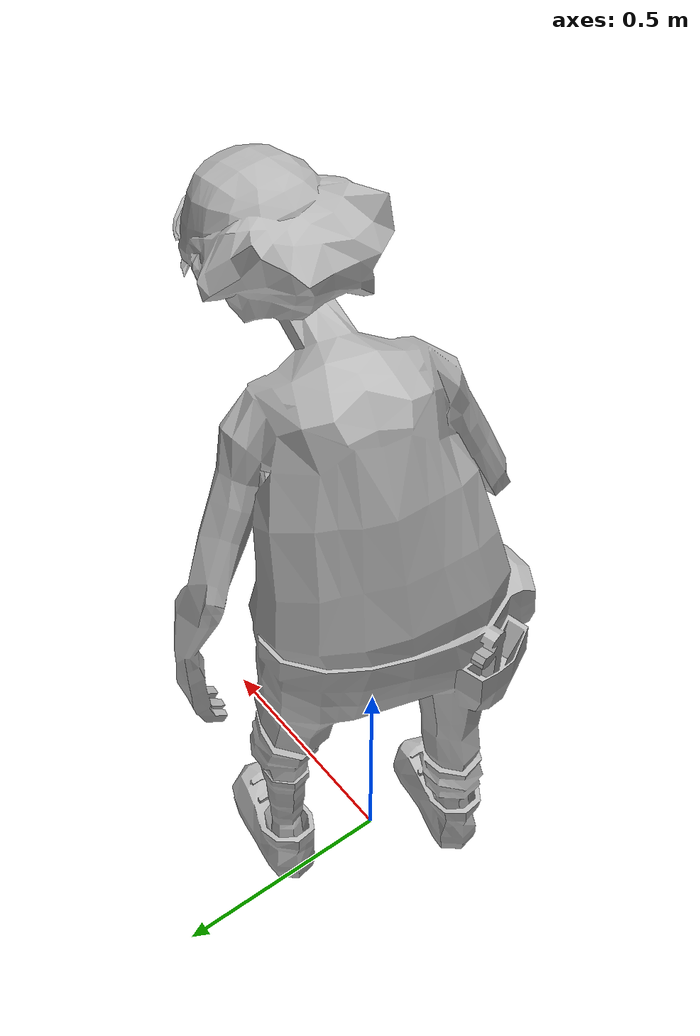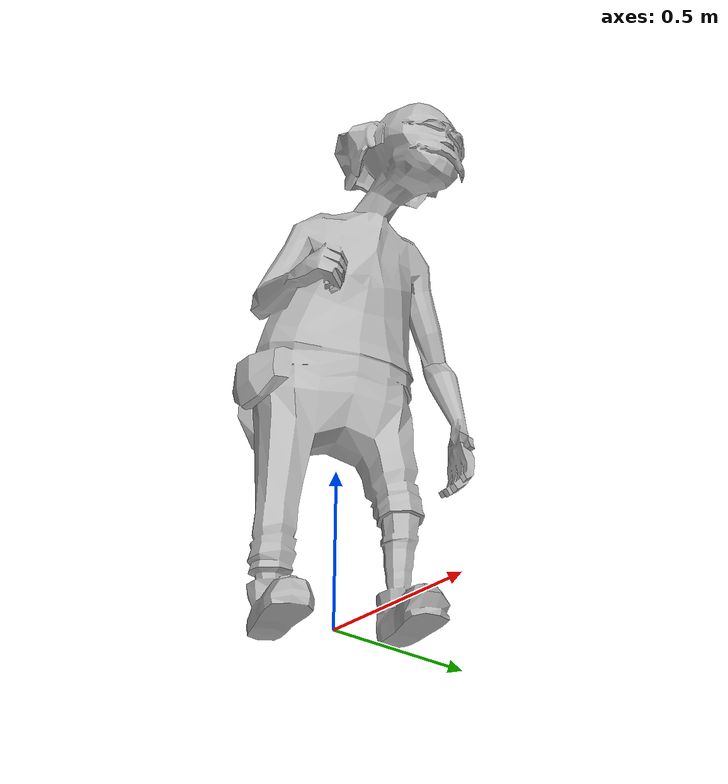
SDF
<?xml version="1.0" ?>
<sdf version="1.5">
  <model name="Nixon">
    <static>true</static>
    <link name="link">
      <collision name="collision">
        <geometry>
            <mesh>
                <uri>model://nixon/meshes/nixon.stl</uri>
                <scale>1 1 1</scale>
            </mesh>
        </geometry>
        <surface>stf format</surface>
      </collision>
      <visual name="visual">
        <geometry>
          <mesh>
            <uri>model://nixon/meshes/nixon.stl</uri>
            <scale>1 1 1</scale>
          </mesh>
        </geometry>
      </visual>
    </link>
    <gazebo reference="link">
      <material>Gazebo/White</material>
    </gazebo>
  </model>
</sdf>
